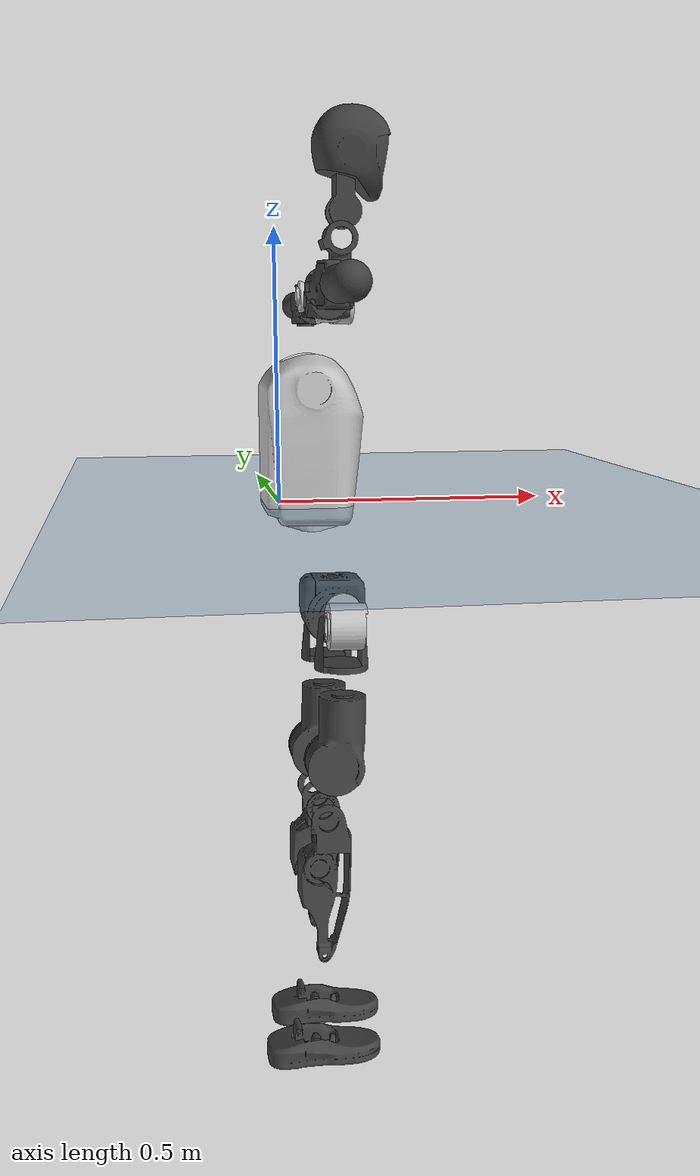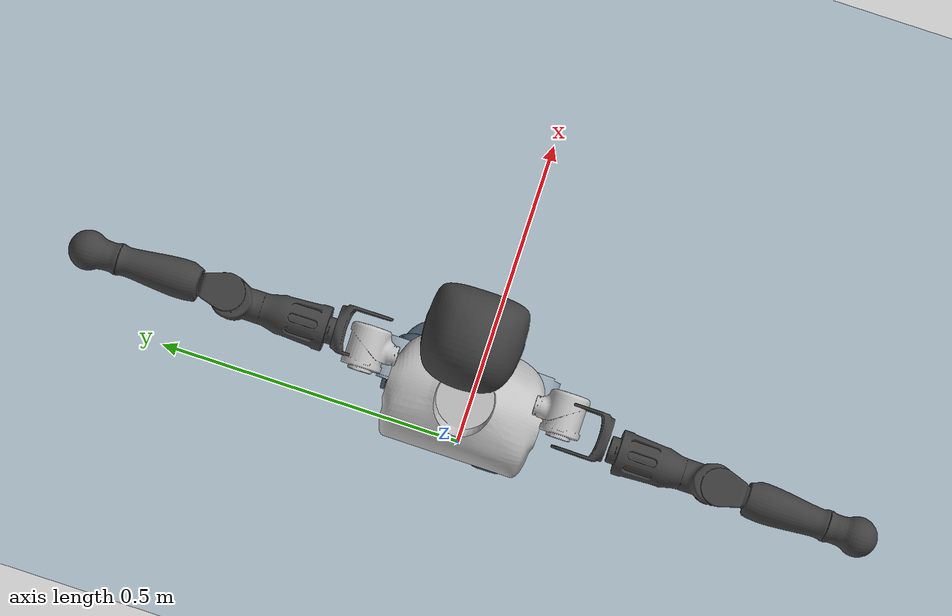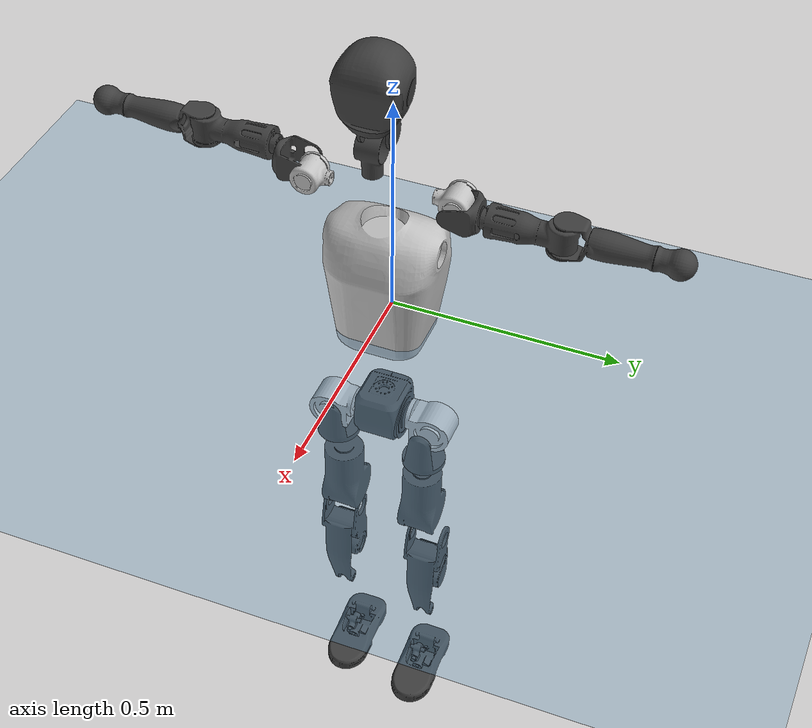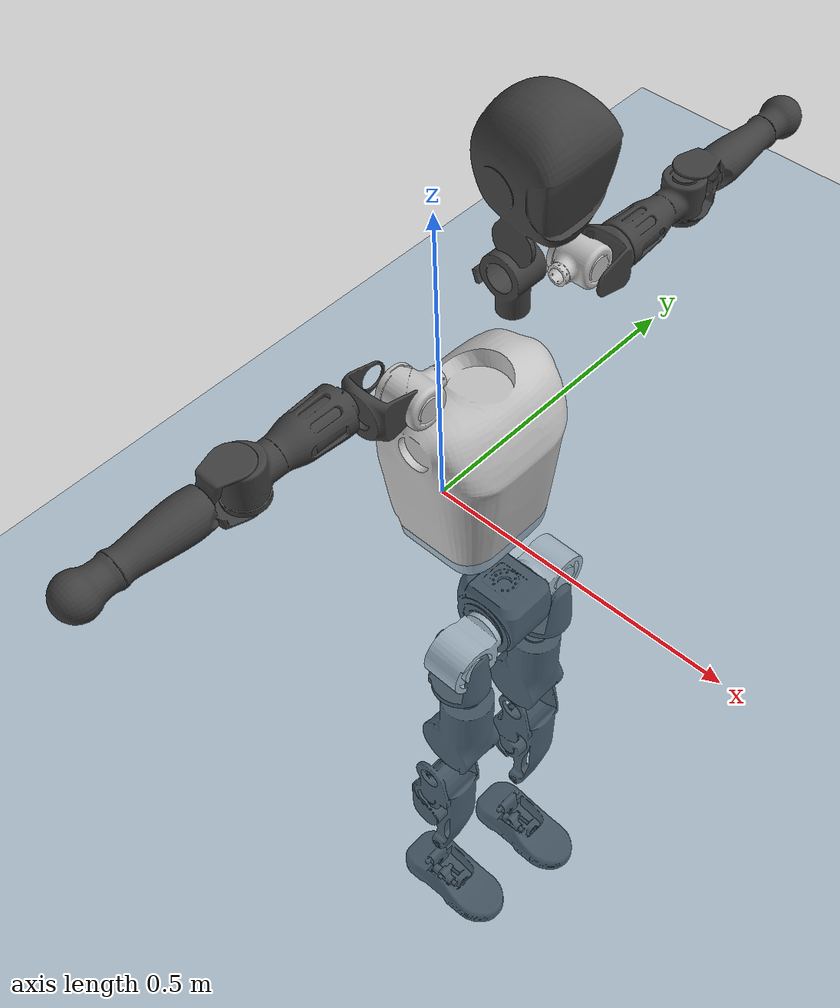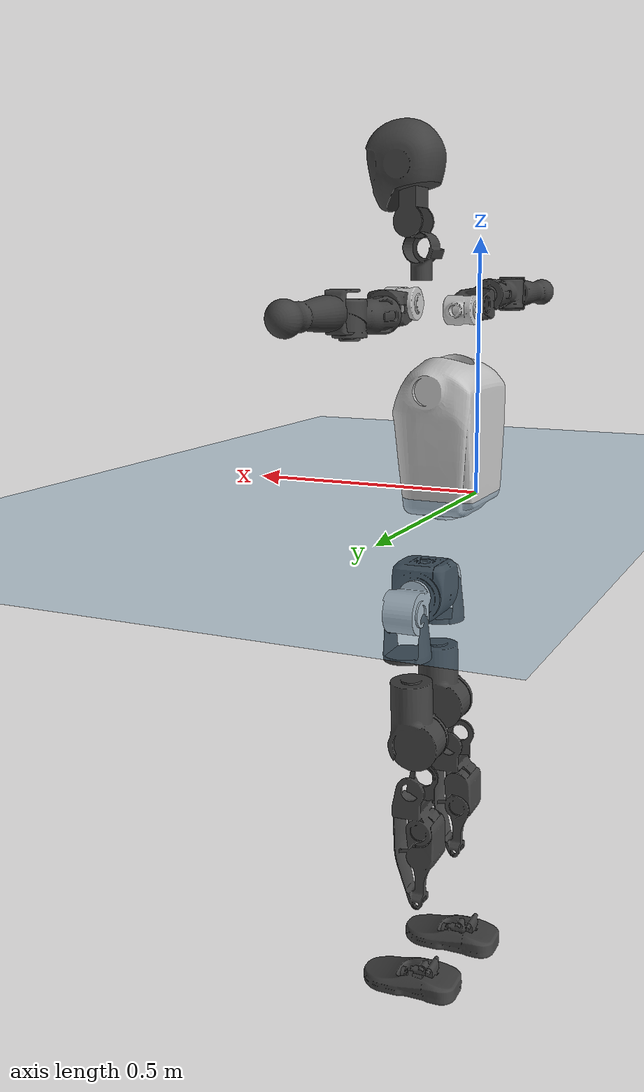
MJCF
<mujoco model="T1">
  <compiler angle="radian" assetdir="assets" balanceinertia="true" inertiafromgeom="false"/>

  <option timestep="0.005" density="1.2" viscosity="2e-05"/>

  <size nkey="1"/>

  <visual>
    <quality shadowsize="8192"/>
    <map shadowclip="0.5"/>
  </visual>

  <default>
    <default class="/">
      <joint armature="0.01" damping="0.01" frictionloss="0.1"/>
      <geom contype="0" conaffinity="0" group="1" solref="-1000 -80"/>
      <site size="0.01 0.005 0.005" group="5"/>
      <general forcelimited="true" biastype="affine" gainprm="25" biasprm="0 -25 -0.6"/>
      <default class="t1">
        <geom rgba="0.25 0.25 0.25 1"/>
        <default class="visual">
          <geom type="mesh" group="2"/>
        </default>
        <default class="collision">
          <geom group="3"/>
        </default>
        <default class="foot">
          <geom size="0.1115 0.05 0.015" type="box" condim="6" group="4" priority="1" solimp="0.015 1 0.015"/>
        </default>
        <default class="reward_collision_sphere">
          <geom group="5" rgba="1 0 0 1"/>
        </default>
      </default>
    </default>
  </default>

  <asset>
    <texture type="skybox" colorspace="auto" name="//unnamed_texture_0" builtin="gradient" rgb1="0.95 0.95 0.95" rgb2="0.95 0.95 0.95" width="100" height="600"/>
    <texture type="2d" colorspace="auto" name="texplane" builtin="checker" rgb1="0.345 0.575 0.748" rgb2="0.345 0.575 0.748" markrgb="1 1 1" width="512" height="512"/>
    <material name="MatPlane" class="/" texture="texplane" texuniform="true" texrepeat="2 2" specular="0.9"/>
    <mesh name="Trunk" class="/" file="Trunk.stl"/>
    <mesh name="H1" class="/" file="H1.stl"/>
    <mesh name="H2" class="/" file="H2.stl"/>
    <mesh name="AL1" class="/" file="AL1.stl"/>
    <mesh name="AL2" class="/" file="AL2.stl"/>
    <mesh name="AL3" class="/" file="AL3.stl"/>
    <mesh name="left_hand_link" class="/" file="left_hand_link.stl"/>
    <mesh name="AR1" class="/" file="AR1.stl"/>
    <mesh name="AR2" class="/" file="AR2.stl"/>
    <mesh name="AR3" class="/" file="AR3.stl"/>
    <mesh name="right_hand_link" class="/" file="right_hand_link.stl"/>
    <mesh name="Waist" class="/" file="Waist.stl"/>
    <mesh name="Hip_Pitch_Left" class="/" file="Hip_Pitch_Left.stl"/>
    <mesh name="Hip_Roll_Left" class="/" file="Hip_Roll_Left.stl"/>
    <mesh name="Hip_Yaw_Left" class="/" file="Hip_Yaw_Left.stl"/>
    <mesh name="Shank_Left" class="/" file="Shank_Left.stl"/>
    <mesh name="Ankle_Cross_Left" class="/" file="Ankle_Cross_Left.stl"/>
    <mesh name="left_foot_link" class="/" file="left_foot_link.stl"/>
    <mesh name="Hip_Pitch_Right" class="/" file="Hip_Pitch_Right.stl"/>
    <mesh name="Hip_Roll_Right" class="/" file="Hip_Roll_Right.stl"/>
    <mesh name="Hip_Yaw_Right" class="/" file="Hip_Yaw_Right.stl"/>
    <mesh name="Shank_Right" class="/" file="Shank_Right.stl"/>
    <mesh name="Ankle_Cross_Right" class="/" file="Ankle_Cross_Right.stl"/>
    <mesh name="right_foot_link" class="/" file="right_foot_link.stl"/>
  </asset>

  <worldbody>
    <geom name="floor" class="/" size="100 100 0.125" type="plane" group="0" material="MatPlane"/>
    <light name="toplight_shadow" class="/" pos="0 0 5" dir="0.0990148 0.0990148 -0.990148" type="directional" ambient="0.04 0.04 0.04" diffuse="0.55 0.55 0.55" specular="0.12 0.12 0.12"/>
    <light name="toplight_fill" class="/" pos="0 0 5" dir="0.0990148 0.0990148 -0.990148" type="directional" castshadow="false" ambient="0.04 0.04 0.04" diffuse="0.3 0.3 0.3" specular="0.08 0.08 0.08"/>
    <body name="trunk" childclass="t1" pos="0.000647126 0.00982122 -0.00315695" quat="0.99998 0.00223535 0.00538995 -0.00244852">
      <inertial pos="0.08549 0.00792744 0.178531" quat="0.998442 0.0326403 0.0441342 0.00999894" mass="36.1799" diaginertia="0.682447 0.111769 0.608362"/>
      <joint name="//unnamed_joint_0" type="free" armature="0" damping="0" frictionloss="0"/>
      <geom name="//unnamed_geom_1" class="visual" rgba="0.76 0.76 0.76 1" mesh="Trunk"/>
      <geom name="//unnamed_geom_2" class="collision" size="0.109932 0.146576 0.219863" pos="0.097767 0 0.201833" type="box"/>
      <geom name="//unnamed_geom_3" class="reward_collision_sphere" size="0.168562" pos="0.097767 0 0.168194"/>
      <geom name="//unnamed_geom_4" class="reward_collision_sphere" size="0.0219863" pos="0.097767 0.0922994 0"/>
      <geom name="//unnamed_geom_5" class="reward_collision_sphere" size="0.0219863" pos="0.097767 -0.0922994 0"/>
      <geom name="//unnamed_geom_6" class="reward_collision_sphere" size="0.0219863" pos="0.097767 0.116189 0.302749"/>
      <geom name="//unnamed_geom_7" class="reward_collision_sphere" size="0.0219863" pos="0.097767 -0.116189 0.302749"/>
      <site name="imu" pos="-0.0614971 -0.00154833 0.0606875" size="0.0146576"/>
      <camera name="track" pos="0 -2.17175 0" quat="0.707107 0.707107 0 0" mode="trackcom"/>
      <camera name="ego_camera" pos="0.198793 0 0.706415" quat="-0.5 -0.5 0.5 0.5"/>
      <body name="H1" pos="0.115259 -0.000627532 0.424445" quat="1 -0.000210298 -3.17561e-05 9.63758e-05">
        <inertial pos="-0.00126171 0.00167858 0.0974242" quat="0.762478 -0.0171393 -0.00449674 0.646771" mass="1.36615" diaginertia="0.00324066 0.000316945 0.00199949"/>
        <joint name="AAHead_yaw" pos="0 0 0" axis="-0.0187971 -0.0167075 0.999684" range="-1.81536 1.51863" armature="0.00315708" damping="0" frictionloss="0.0363581"/>
        <geom name="//unnamed_geom_8" class="visual" mesh="H1"/>
        <body name="H2" pos="0.00886167 0.0177462 0.110537" quat="0.999991 0.00413256 -0.000626469 -5.70492e-05">
          <inertial pos="-0.000770401 0.0152489 0.182682" quat="0.994859 0.0737006 -0.0161969 -0.0675366" mass="1.69723" diaginertia="0.0213687 0.00338965 0.0221077"/>
          <joint name="Head_pitch" pos="0 0 0" axis="-0.0375644 -0.999279 -0.00544952" range="-1.30698 0.477831" armature="0.00626275" damping="0.0812978" frictionloss="0.114401"/>
          <geom name="//unnamed_geom_9" class="visual" mesh="H2"/>
          <geom name="//unnamed_geom_10" class="collision" size="0.11726" pos="0.0162945 0 0.185013"/>
          <geom name="//unnamed_geom_11" class="reward_collision_sphere" size="0.131918" pos="0.032589 0 0.168194"/>
        </body>
      </body>
      <body name="AL1" pos="0.0881981 0.114881 0.383964" quat="0.999968 -0.00445686 -0.00202308 0.00632275">
        <inertial pos="0.0102263 0.0449771 0.00336886" quat="0.502856 0.496696 -0.504405 0.495988" mass="1.86392" diaginertia="0.017738 0.00264485 0.00521992"/>
        <joint name="Left_Shoulder_Pitch" pos="0 0 0" axis="0.00722996 0.998053 -0.0619538" range="-3.09882 0.896181" armature="0.0143093" damping="0.082342" frictionloss="0.0729271"/>
        <geom name="//unnamed_geom_12" class="visual" rgba="0.76 0.76 0.76 1" mesh="AL1"/>
        <body name="AL2" pos="0.0149849 0.0430558 -0.00776466" quat="1 -0.000165525 -9.67526e-05 0.000165254">
          <inertial pos="0.0151267 0.025725 0.00958124" quat="0.50789 0.511212 -0.478496 0.501748" mass="0.454293" diaginertia="0.00386167 0.000417493 0.00231334"/>
          <joint name="Left_Shoulder_Roll" pos="0 0 0" axis="-0.999712 0.00646119 -0.0231314" stiffness="0.0881561" range="-1.76433 1.67741" armature="0.00309026" damping="0" frictionloss="0.148285"/>
          <geom name="//unnamed_geom_13" class="visual" mesh="AL2"/>
          <body name="AL3" pos="-0.00748912 0.0687294 -0.0102257" quat="0.999995 -0.000147154 -0.00208327 -0.00218597">
            <inertial pos="-0.0146063 0.108278 -0.00851233" quat="0.722817 0.689511 -0.0182983 -0.0421215" mass="4.45425" diaginertia="0.142209 0.0217767 0.0112865"/>
            <joint name="Left_Elbow_Pitch" pos="0 0 0" axis="0.0180767 -0.998881 -0.0437046" stiffness="0.0430037" range="-1.94144 2.43968" armature="0.00213922" damping="0.0268386" frictionloss="0.162673"/>
            <geom name="//unnamed_geom_14" class="visual" mesh="AL3"/>
            <geom name="//unnamed_geom_15" class="collision" size="0.0439727 0.109932" pos="0 0.0542938 0" quat="0.707105 0.707108 0 0" type="cylinder"/>
            <geom name="//unnamed_geom_16" class="reward_collision_sphere" size="0.0527672"/>
            <body name="left_hand_link" pos="0.00621647 0.154515 0.0115152" quat="0.999968 -0.00497662 -0.0012333 0.00621899">
              <inertial pos="0.0163518 0.110262 0.000471557" quat="0.72593 0.687544 0.0154972 -0.00830114" mass="1.04517" diaginertia="0.110734 0.0109245 0.00235158"/>
              <joint name="Left_Elbow_Yaw" pos="0 0 0" axis="-0.0025091 -0.00515541 0.999984" range="-2.37808 0.333232" armature="0.0181731" damping="0" frictionloss="0.133475"/>
              <geom name="//unnamed_geom_17" class="visual" mesh="left_hand_link"/>
              <geom name="//unnamed_geom_18" class="collision" size="0.0439727 0.128254" pos="0 0.141164 0" quat="0.707105 0.707108 0 0" type="cylinder"/>
              <geom name="//unnamed_geom_19" class="reward_collision_sphere" size="0.0732878"/>
              <geom name="//unnamed_geom_20" class="reward_collision_sphere" size="0.0513014" pos="0 0.119446 0"/>
              <geom name="//unnamed_geom_21" class="reward_collision_sphere" size="0.0513014" pos="0 0.233463 0"/>
            </body>
          </body>
        </body>
      </body>
      <body name="AR1" pos="0.0855405 -0.100366 0.363596" quat="0.99999 0.00201652 0.00386727 0.00127165">
        <inertial pos="0.0101587 -0.0313326 0.00623376" quat="0.485172 0.478641 -0.491038 0.542579" mass="1.78408" diaginertia="0.0206645 0.0023792 0.00414135"/>
        <joint name="Right_Shoulder_Pitch" pos="0 0 0" axis="0.0116276 -0.997465 0.0701985" stiffness="0.0865228" range="-1.26393 3.51112" armature="0.00411887" damping="0.0532165" frictionloss="0.215779"/>
        <geom name="//unnamed_geom_22" class="visual" rgba="0.76 0.76 0.76 1" mesh="AR1"/>
        <body name="AR2" pos="-0.0166086 -0.0625645 0.0106496" quat="0.999971 -0.00377683 0.000274876 -0.00654279">
          <inertial pos="0.0176851 -0.0435794 0.00803256" quat="0.50249 0.484225 -0.487426 0.524829" mass="0.604688" diaginertia="0.00463135 0.000426344 0.00257786"/>
          <joint name="Right_Shoulder_Roll" pos="0 0 0" axis="-0.99967 0.00927659 0.0239522" stiffness="0.0171955" range="-1.90067 1.41842" armature="0.0141964" damping="0" frictionloss="0.0179904"/>
          <geom name="//unnamed_geom_23" class="visual" mesh="AR2"/>
          <body name="AR3" pos="-0.0107845 -0.0736686 0.0178163" quat="1 -0.000182848 7.16065e-05 2.29745e-05">
            <inertial pos="-0.00262671 -0.0774868 0.00877735" quat="0.659137 0.751499 0.0233962 0.0155313" mass="3.18854" diaginertia="0.14514 0.0206048 0.00677609"/>
            <joint name="Right_Elbow_Pitch" pos="0 0 0" axis="0.0590805 0.99733 0.0429154" range="-1.97717 2.48488" armature="0.0265494" damping="0" frictionloss="0.0622145"/>
            <geom name="//unnamed_geom_24" class="visual" mesh="AR3"/>
            <geom name="//unnamed_geom_25" class="collision" size="0.0439727 0.109932" pos="0 -0.0542938 0" quat="0.707105 0.707108 0 0" type="cylinder"/>
            <geom name="//unnamed_geom_26" class="reward_collision_sphere" size="0.0527672"/>
            <body name="right_hand_link" pos="-0.00135805 -0.156011 -0.000156734" quat="0.999977 0.00093174 -0.00237507 -0.00631391">
              <inertial pos="-0.00301382 -0.10961 -0.0143475" quat="0.706343 0.707868 -0.000270266 -0.00119412" mass="1.22624" diaginertia="0.10991 0.0131935 0.00324924"/>
              <joint name="Right_Elbow_Yaw" pos="0 0 0" axis="-0.0530296 -0.0169323 0.998449" range="0.0597335 2.20755" armature="0.00328659" damping="0.0956542" frictionloss="0.0547662"/>
              <geom name="//unnamed_geom_27" class="visual" mesh="right_hand_link"/>
              <geom name="//unnamed_geom_28" class="collision" size="0.0439727 0.128254" pos="0 -0.141164 0" quat="0.707105 0.707108 0 0" type="cylinder"/>
              <geom name="//unnamed_geom_29" class="reward_collision_sphere" size="0.0732878"/>
              <geom name="//unnamed_geom_30" class="reward_collision_sphere" size="0.0513014" pos="0 -0.119446 0"/>
              <geom name="//unnamed_geom_31" class="reward_collision_sphere" size="0.0513014" pos="0 -0.233463 0"/>
            </body>
          </body>
        </body>
      </body>
      <body name="Waist" pos="0.10255 0.0138973 -0.210807" quat="1 -9.05627e-05 0.000489184 -0.000359155">
        <inertial pos="0.0187268 0.00573485 0.00736088" quat="0.981223 0.0681905 -0.178758 -0.024428" mass="9.98046" diaginertia="0.0707369 0.0101475 0.0784387"/>
        <joint name="Waist" pos="0 0 0" axis="-0.0671465 0.0303211 0.997282" stiffness="0.0522079" range="-1.67869 1.87026" armature="0.0133273" damping="0" frictionloss="0.0411901"/>
        <geom name="//unnamed_geom_32" class="visual" mesh="Waist"/>
        <body name="Hip_Pitch_Left" pos="-0.00277383 0.115118 0.005397" quat="0.999988 -0.00466505 -0.000733588 -0.00121783">
          <inertial pos="0.0047599 0.00145217 -0.0272713" quat="0.971724 0.232351 0.0415904 0.00595736" mass="2.72607" diaginertia="0.0205754 0.00170558 0.0143689"/>
          <joint name="Left_Hip_Pitch" pos="0 0 0" axis="0.0505544 0.996032 0.0732485" stiffness="0.0817125" range="-1.7974 1.24494" armature="0.00774212" damping="0.0736231" frictionloss="0.162474"/>
          <geom name="//unnamed_geom_33" class="visual" rgba="0.76 0.76 0.76 1" mesh="Hip_Pitch_Left"/>
          <body name="Hip_Roll_Left" pos="0.00714331 -0.0178717 -0.0477264" quat="0.999962 -0.00739398 0.00348012 0.00298694">
            <inertial pos="0.0152605 -0.00138738 -0.0956106" quat="0.716316 0.0275181 0.00117733 0.697232" mass="1.57101" diaginertia="0.0196376 0.00267771 0.00844826"/>
            <joint name="Left_Hip_Roll" pos="0 0 0" axis="-0.99673 -0.0796999 -0.0132827" range="-1.74342 0.232025" armature="0.0218467" damping="0.0297741" frictionloss="0.186344"/>
            <geom name="//unnamed_geom_34" class="visual" mesh="Hip_Roll_Left"/>
            <geom name="//unnamed_geom_35" class="reward_collision_sphere" size="0.0806165"/>
            <body name="Hip_Yaw_Left" pos="-0.00845249 -0.00464759 -0.128961" quat="1 -0.000138532 -0.00017776 -0.000243868">
              <inertial pos="-0.0149607 -0.0065108 -0.149146" quat="0.731161 -0.00660842 0.0262176 0.681669" mass="9.0092" diaginertia="0.292252 0.048116 0.0417512"/>
              <joint name="Left_Hip_Yaw" pos="0 0 0" axis="0.00854749 0.00828647 -0.999929" stiffness="0.00451453" range="-0.75094 1.00372" armature="0.0141414" damping="0" frictionloss="0.120158"/>
              <geom name="//unnamed_geom_36" class="visual" mesh="Hip_Yaw_Left"/>
              <geom name="//unnamed_geom_37" class="collision" size="0.0732878 0.11726" type="cylinder"/>
              <body name="Shank_Left" pos="-0.0151099 0.0150943 -0.227323" quat="1 0.00010907 -0.000241226 6.63741e-05">
                <inertial pos="-0.00149558 0.0132663 -0.205774" quat="0.992889 -0.0142342 -0.0898359 0.0768017" mass="4.09586" diaginertia="0.343183 0.0461203 0.025767"/>
                <joint name="Left_Knee_Pitch" pos="0 0 0" axis="0.0241837 0.999262 0.029842" range="-0.16195 2.53564" armature="0.00438292" damping="0.0745143" frictionloss="0.192208"/>
                <geom name="//unnamed_geom_38" class="visual" mesh="Shank_Left"/>
                <geom name="//unnamed_geom_39" class="collision" size="0.0732878 0.109932" pos="0 0 -0.201833" type="cylinder"/>
                <geom name="//unnamed_geom_40" class="reward_collision_sphere" size="0.0952741"/>
                <body name="Ankle_Cross_Left" pos="-0.00127435 -0.0123389 -0.457141" quat="0.999972 -0.00597044 0.00276401 0.00367358">
                  <inertial pos="0.00336892 0.0168049 -0.00902698" quat="0.417776 0.596444 0.514767 0.452475" mass="0.237537" diaginertia="0.000349745 3.27742e-05 0.000133316"/>
                  <joint name="Left_Ankle_Pitch" pos="0 0 0" axis="0.0518508 0.99837 0.0238617" stiffness="0.0314785" range="-0.981688 0.204183" armature="0.0199337" damping="0.0240651" frictionloss="0.120431"/>
                  <geom name="//unnamed_geom_41" class="visual" mesh="Ankle_Cross_Left"/>
                  <body name="left_foot_link" pos="0.01394 0.0165071 -0.0128276" quat="1 -6.66802e-05 -0.000149157 0.000367971">
                    <inertial pos="-0.0150224 0.0030354 -0.0325819" quat="-0.0281343 0.611775 -0.00902723 0.79048" mass="2.22152" diaginertia="0.035797 0.00363233 0.0349785"/>
                    <joint name="Left_Ankle_Roll" pos="0 0 0" axis="-0.999996 -0.00259527 0.000937065" range="-0.417076 0.4299" armature="0.0262657" damping="0.0661346" frictionloss="0.157615"/>
                    <geom name="//unnamed_geom_42" class="visual" mesh="left_foot_link"/>
                    <geom name="left_foot" class="foot" size="0.135673 0.102332 0.0165702" pos="0.0162945 0 -0.0252291"/>
                    <geom name="//unnamed_geom_44" class="reward_collision_sphere" size="0.0762193" pos="0.0162945 0 -0.0252291"/>
                    <geom name="//unnamed_geom_45" class="reward_collision_sphere" size="0.0439727" pos="0.154798 -0.0249751 -0.0252291"/>
                    <geom name="//unnamed_geom_46" class="reward_collision_sphere" size="0.0439727" pos="-0.114062 -0.0249751 -0.0252291"/>
                    <site name="left_foot" class="foot" pos="0.0162945 0 -0.0252291" size="0.0146576"/>
                  </body>
                </body>
              </body>
            </body>
          </body>
        </body>
        <body name="Hip_Pitch_Right" pos="0.013285 -0.114412 0.0115768" quat="0.999963 -0.000377706 0.00793812 -0.00322942">
          <inertial pos="0.00598402 0.0260975 -0.0306012" quat="0.967061 -0.247395 0.0284863 -0.0527059" mass="3.30949" diaginertia="0.0246985 0.00254962 0.0220254"/>
          <joint name="Right_Hip_Pitch" pos="0 0 0" axis="-0.000476036 -0.999993 -0.00379405" stiffness="0.0381746" range="-1.31942 1.80074" armature="0.0216427" damping="0" frictionloss="0.0264267"/>
          <geom name="//unnamed_geom_47" class="visual" rgba="0.76 0.76 0.76 1" mesh="Hip_Pitch_Right"/>
          <body name="Hip_Roll_Right" pos="-0.00496534 0.0082937 -0.0252878" quat="1 -5.17973e-05 0.000336288 4.08842e-05">
            <inertial pos="0.0171134 -0.0171921 -0.0737935" quat="0.719586 -0.0316079 -0.0380044 0.692642" mass="1.13593" diaginertia="0.0183528 0.00222307 0.0067497"/>
            <joint name="Right_Hip_Roll" pos="0 0 0" axis="-0.999982 0.00235124 -0.00553855" range="-0.123276 1.57129" armature="0.00802099" damping="0" frictionloss="0.115501"/>
            <geom name="//unnamed_geom_48" class="visual" mesh="Hip_Roll_Right"/>
            <geom name="//unnamed_geom_49" class="reward_collision_sphere" size="0.0806165"/>
            <body name="Hip_Yaw_Right" pos="0.00274589 0.0115766 -0.132621" quat="0.99999 -0.00412621 -0.000709101 0.00179453">
              <inertial pos="-0.0229851 0.0114224 -0.156136" quat="0.715357 -0.0290379 -0.033338 0.697359" mass="6.93796" diaginertia="0.244684 0.0379343 0.0332449"/>
              <joint name="Right_Hip_Yaw" pos="0 0 0" axis="0.00492188 -0.00244715 -0.999985" stiffness="0.017321" range="-0.899199 1.28083" armature="0.0277527" damping="0" frictionloss="0.0315444"/>
              <geom name="//unnamed_geom_50" class="visual" mesh="Hip_Yaw_Right"/>
              <geom name="//unnamed_geom_51" class="collision" size="0.0732878 0.11726" type="cylinder"/>
              <body name="Shank_Right" pos="-0.030851 -0.0159398 -0.230356" quat="0.999971 -0.00626103 -0.000295556 0.00423634">
                <inertial pos="-0.0116414 -0.0132871 -0.222714" quat="0.999237 -0.0372383 0.00598 0.0101821" mass="6.6047" diaginertia="0.46069 0.0551393 0.0206961"/>
                <joint name="Right_Knee_Pitch" pos="0 0 0" axis="0.0433515 -0.997361 -0.0582447" stiffness="0.00272669" range="-2.6227 0.27527" armature="0.0184065" damping="0" frictionloss="0.206497"/>
                <geom name="//unnamed_geom_52" class="visual" mesh="Shank_Right"/>
                <geom name="//unnamed_geom_53" class="collision" size="0.0732878 0.109932" pos="0 0 -0.201833" type="cylinder"/>
                <geom name="//unnamed_geom_54" class="reward_collision_sphere" size="0.0952741"/>
                <body name="Ankle_Cross_Right" pos="-0.0101909 0.014208 -0.471579" quat="0.99996 0.00546434 -0.00634471 0.00316794">
                  <inertial pos="0.00202722 0.0078494 -0.0264858" quat="0.421506 0.535223 0.547031 0.486443" mass="0.222777" diaginertia="0.00030679 3.8747e-05 0.00017983"/>
                  <joint name="Right_Ankle_Pitch" pos="0 0 0" axis="-0.016177 -0.999187 -0.0369324" stiffness="0.0249333" range="-0.0681731 0.798697" armature="0.0122312" damping="0.0106703" frictionloss="0.179957"/>
                  <geom name="//unnamed_geom_55" class="visual" mesh="Ankle_Cross_Right"/>
                  <body name="right_foot_link" pos="0.00719293 0.0147335 -0.0105554" quat="0.999996 -0.000995937 -0.00108541 0.00243528">
                    <inertial pos="0.00251073 -0.00770106 -0.00150276" quat="0.0297486 0.612953 0.00397009 0.789549" mass="2.3538" diaginertia="0.0295524 0.00359279 0.0337231"/>
                    <joint name="Right_Ankle_Roll" pos="0 0 0" axis="-0.99814 -0.0208128 -0.0572943" stiffness="0.0567834" range="-0.797333 0.44495" armature="0.00367233" damping="0.00525049" frictionloss="0.236364"/>
                    <geom name="//unnamed_geom_56" class="visual" mesh="right_foot_link"/>
                    <geom name="right_foot" class="foot" size="0.174989 0.103449 0.0217002" pos="0.0162945 0 -0.0252291"/>
                    <geom name="//unnamed_geom_58" class="reward_collision_sphere" size="0.0586302"/>
                    <geom name="//unnamed_geom_59" class="reward_collision_sphere" size="0.0439727" pos="0.0162945 0 -0.0252291"/>
                    <geom name="//unnamed_geom_60" class="reward_collision_sphere" size="0.0439727" pos="0.154798 0.0249751 -0.0252291"/>
                    <geom name="//unnamed_geom_61" class="reward_collision_sphere" size="0.0439727" pos="-0.114062 0.0249751 -0.0252291"/>
                    <site name="right_foot" class="foot" pos="0.0162945 0 -0.0252291" size="0.0146576"/>
                  </body>
                </body>
              </body>
            </body>
          </body>
        </body>
      </body>
    </body>
  </worldbody>

  <contact>
    <pair class="/" geom1="floor" geom2="left_foot" name="//unnamed_contact_0"/>
    <pair class="/" geom1="floor" geom2="right_foot" name="//unnamed_contact_1"/>
  </contact>

  <actuator>
    <general name="AAHead_yaw" class="/" joint="AAHead_yaw" forcerange="-14.4143 14.4143" gainprm="40.081" biasprm="0 -40.081 -0.935997"/>
    <general name="Head_pitch" class="/" joint="Head_pitch" forcerange="-5.65595 5.65595" gainprm="40.081" biasprm="0 -40.081 -0.935997"/>
    <general name="Left_Shoulder_Pitch" class="/" joint="Left_Shoulder_Pitch" forcerange="-31.0046 31.0046" gainprm="40.081" biasprm="0 -40.081 -0.935997"/>
    <general name="Left_Shoulder_Roll" class="/" joint="Left_Shoulder_Roll" forcerange="-12.0706 12.0706" gainprm="40.081" biasprm="0 -40.081 -0.935997"/>
    <general name="Left_Elbow_Pitch" class="/" joint="Left_Elbow_Pitch" forcerange="-30.4714 30.4714" gainprm="40.081" biasprm="0 -40.081 -0.935997"/>
    <general name="Left_Elbow_Yaw" class="/" joint="Left_Elbow_Yaw" forcerange="-25.7571 25.7571" gainprm="40.081" biasprm="0 -40.081 -0.935997"/>
    <general name="Right_Shoulder_Pitch" class="/" joint="Right_Shoulder_Pitch" forcerange="-27.3966 27.3966" gainprm="40.081" biasprm="0 -40.081 -0.935997"/>
    <general name="Right_Shoulder_Roll" class="/" joint="Right_Shoulder_Roll" forcerange="-34.2302 34.2302" gainprm="40.081" biasprm="0 -40.081 -0.935997"/>
    <general name="Right_Elbow_Pitch" class="/" joint="Right_Elbow_Pitch" forcerange="-20.8395 20.8395" gainprm="40.081" biasprm="0 -40.081 -0.935997"/>
    <general name="Right_Elbow_Yaw" class="/" joint="Right_Elbow_Yaw" forcerange="-32.1566 32.1566" gainprm="40.081" biasprm="0 -40.081 -0.935997"/>
    <general name="Waist" class="/" joint="Waist" forcerange="-67.9811 67.9811" gainprm="40.081" biasprm="0 -40.081 -0.935997"/>
    <general name="Left_Hip_Pitch" class="/" joint="Left_Hip_Pitch" forcerange="-84.4304 84.4304" gainprm="40.081" biasprm="0 -40.081 -0.935997"/>
    <general name="Left_Hip_Roll" class="/" joint="Left_Hip_Roll" forcerange="-47.2564 47.2564" gainprm="40.081" biasprm="0 -40.081 -0.935997"/>
    <general name="Left_Hip_Yaw" class="/" joint="Left_Hip_Yaw" forcerange="-53.231 53.231" gainprm="40.081" biasprm="0 -40.081 -0.935997"/>
    <general name="Left_Knee_Pitch" class="/" joint="Left_Knee_Pitch" forcerange="-133.131 133.131" gainprm="40.081" biasprm="0 -40.081 -0.935997"/>
    <general name="Left_Ankle_Pitch" class="/" joint="Left_Ankle_Pitch" forcerange="-10.6308 10.6308" gainprm="40.081" biasprm="0 -40.081 -0.935997"/>
    <general name="Left_Ankle_Roll" class="/" joint="Left_Ankle_Roll" forcerange="-36.6449 36.6449" gainprm="40.081" biasprm="0 -40.081 -0.935997"/>
    <general name="Right_Hip_Pitch" class="/" joint="Right_Hip_Pitch" forcerange="-67.4228 67.4228" gainprm="40.081" biasprm="0 -40.081 -0.935997"/>
    <general name="Right_Hip_Roll" class="/" joint="Right_Hip_Roll" forcerange="-66.6683 66.6683" gainprm="40.081" biasprm="0 -40.081 -0.935997"/>
    <general name="Right_Hip_Yaw" class="/" joint="Right_Hip_Yaw" forcerange="-18.1015 18.1015" gainprm="40.081" biasprm="0 -40.081 -0.935997"/>
    <general name="Right_Knee_Pitch" class="/" joint="Right_Knee_Pitch" forcerange="-65.9821 65.9821" gainprm="40.081" biasprm="0 -40.081 -0.935997"/>
    <general name="Right_Ankle_Pitch" class="/" joint="Right_Ankle_Pitch" forcerange="-29.711 29.711" gainprm="40.081" biasprm="0 -40.081 -0.935997"/>
    <general name="Right_Ankle_Roll" class="/" joint="Right_Ankle_Roll" forcerange="-22.6363 22.6363" gainprm="40.081" biasprm="0 -40.081 -0.935997"/>
  </actuator>

  <sensor>
    <gyro site="imu" name="imu_angular_velocity"/>
    <velocimeter site="imu" name="imu_linear_velocity"/>
    <framelinvel objtype="site" objname="left_foot" name="left_foot_global_linear_velocity"/>
    <framelinvel objtype="site" objname="right_foot" name="right_foot_global_linear_velocity"/>
  </sensor>

  <keyframe>
    <key name="home" qpos="0 0 0.6385 1 0 0 0 0 0 0 1.4 0 -0.4 0 -1.4 0 0.4 0 -0.4 0 0 0.8 -0.4 0 0.4 0 0 -0.8 0.4 0"/>
  </keyframe>
</mujoco>
